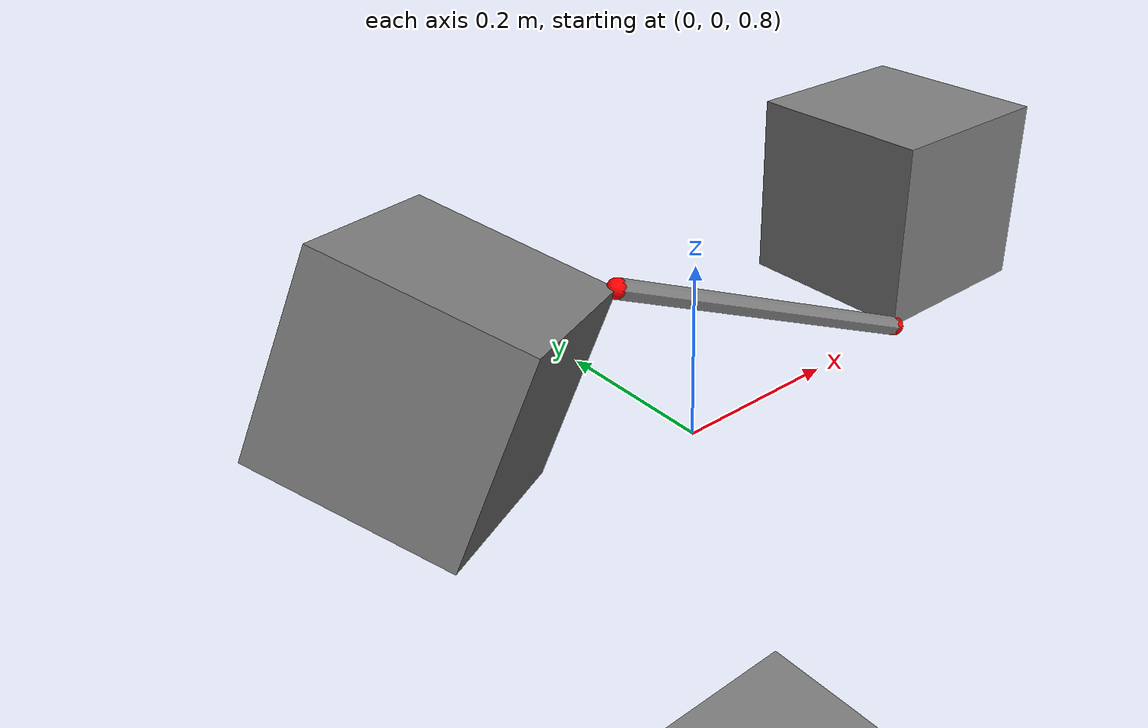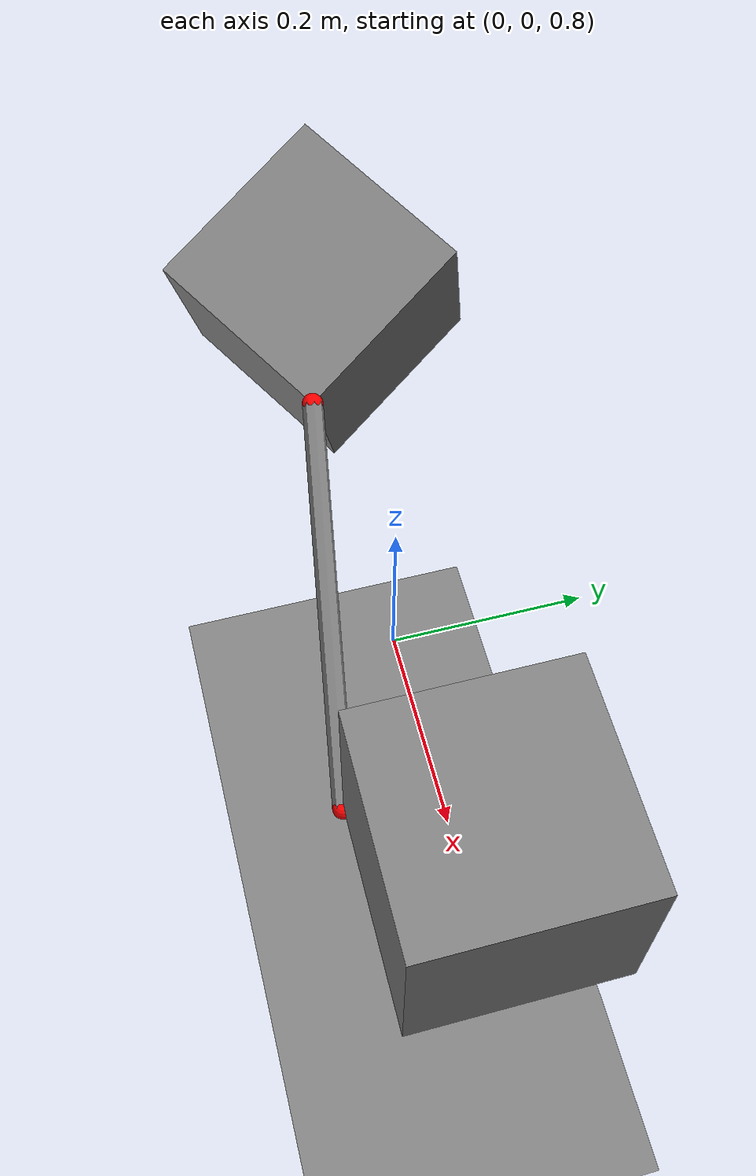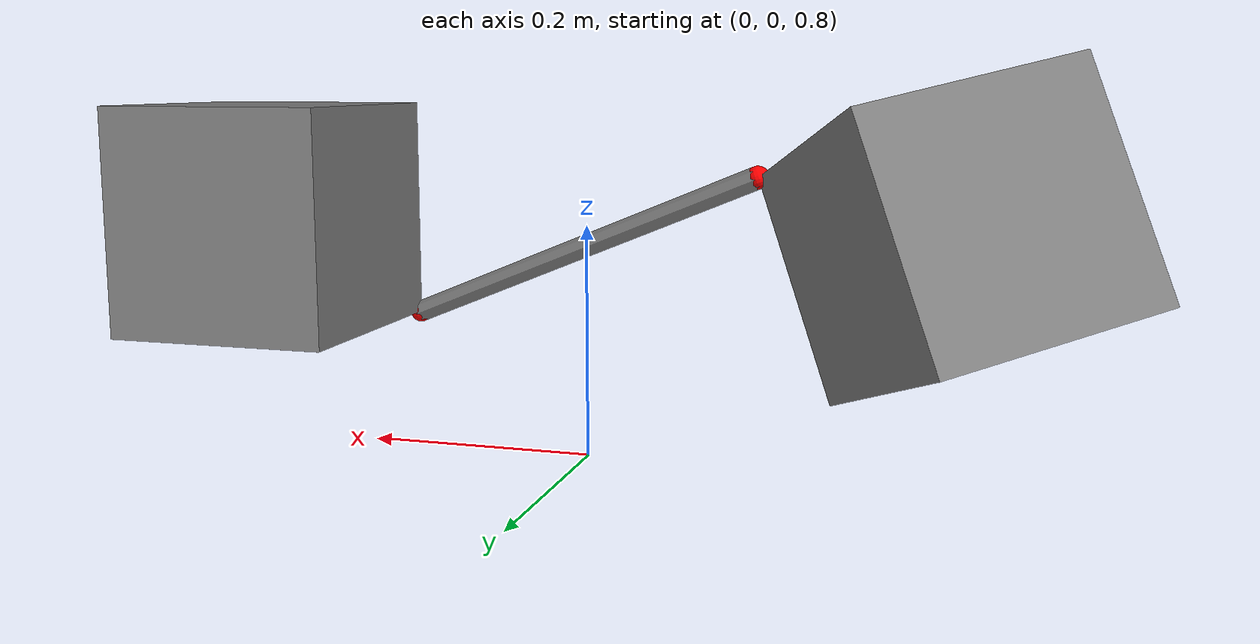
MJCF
<mujoco>
  <custom>
    <numeric name="duration" data="2.0"/>
  </custom>

  <option>
    <flag sleep="enable"/>
  </option>

  <worldbody>
    <light pos="0 -1 4"/>
    <geom type="plane" size="1.5 1.5 .01" rgba=".5 .5 .5 .5"/>

    <body pos=".3 0 1" sleep="init">
      <freejoint/>
      <geom type="box" size=".1 .1 .1"/>
      <site name="1" pos="-.1 -.1 -.1" size=".01" rgba="1 0 0 1"/>
    </body>

    <body pos="-.3 0 1" euler="10 20 30">
      <freejoint/>
      <geom type="box" size=".1 .1 .1"/>
      <site name="2" pos=".1 -.1 .1" size=".01" rgba="1 0 0 1"/>
    </body>
  </worldbody>

  <tendon>
    <spatial range="0 .6" width="0.01">
      <site site="1"/>
      <site site="2"/>
    </spatial>
  </tendon>
</mujoco>
